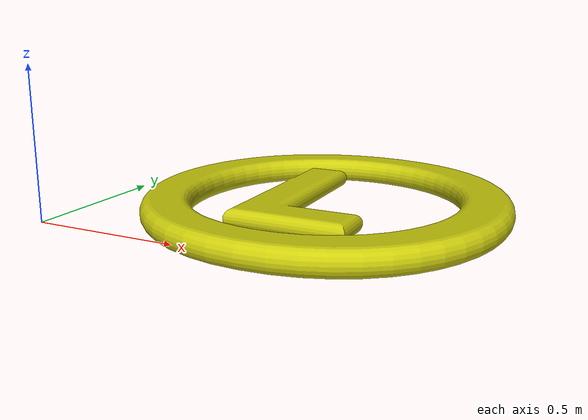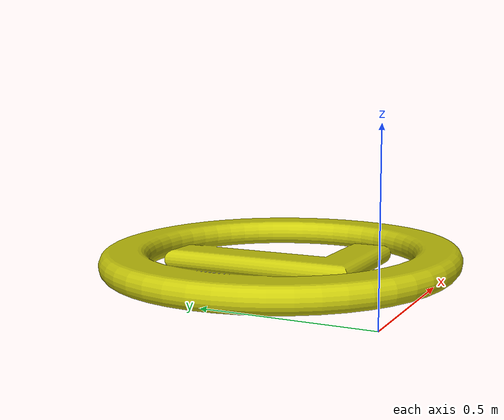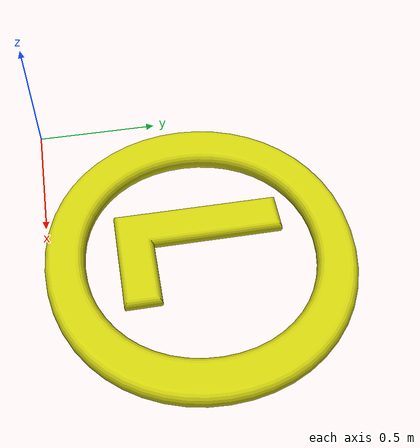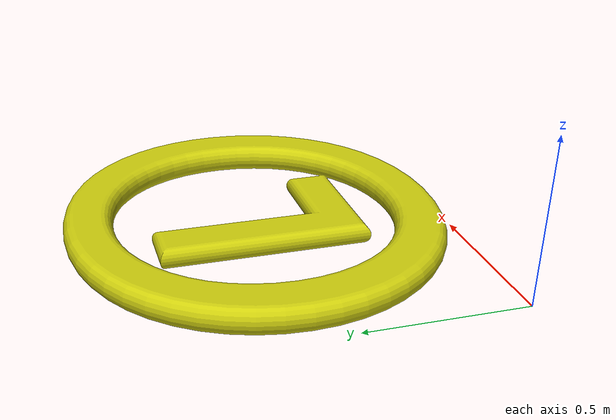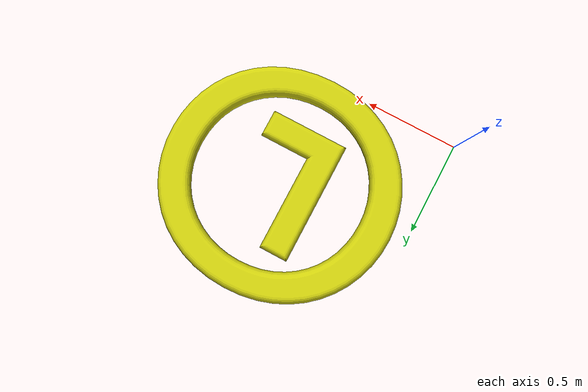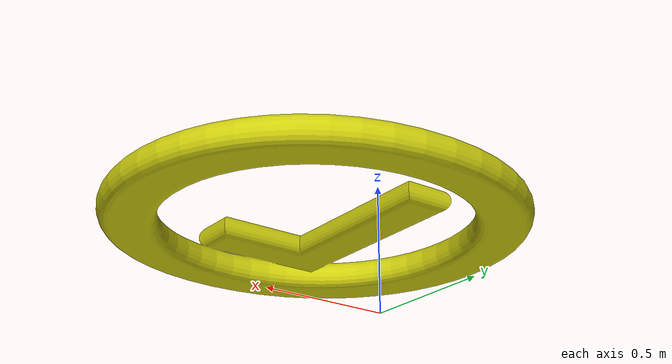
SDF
<?xml version="1.0" ?>
<sdf version="1.5">
  <model name="landing_yellow">
    <static>true</static>
    <link name="link">
      <pose>0 0 0 0 0 0</pose>
      <visual name="visual">
        <cast_shadows>false</cast_shadows>
        <geometry>
          <mesh>
            <uri>model://landing_yellow/yellow.dae</uri>
            <scale>0.8 0.8 1.0</scale>
          </mesh>
        </geometry>
      </visual>
    </link>
  </model>
</sdf>
